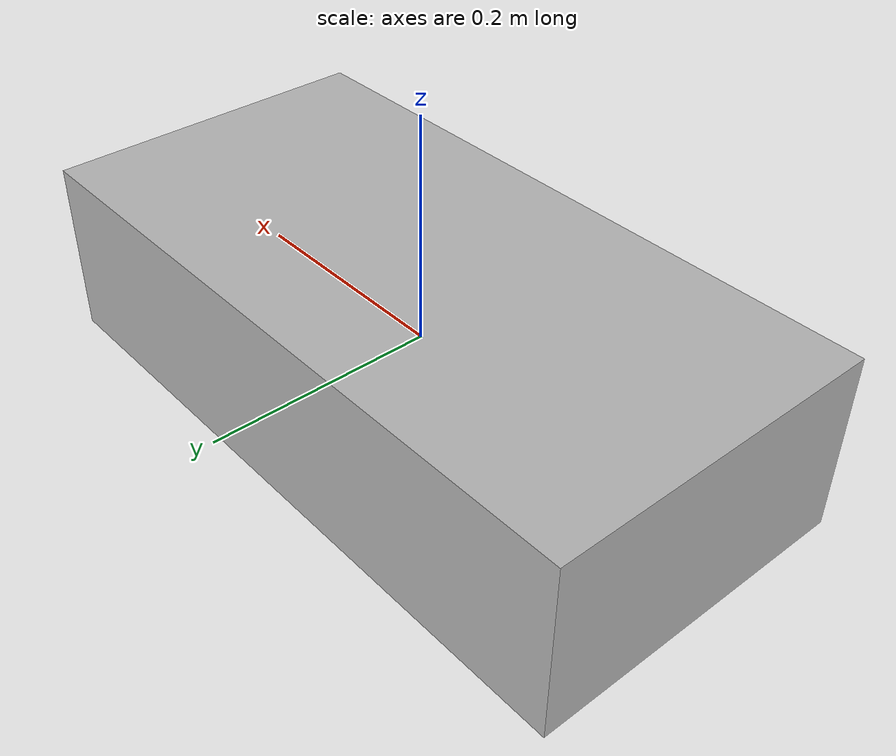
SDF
<?xml version="1.0"?>
<sdf version="1.9">
  <model name="charging_dock">
    <static>true</static>
    <link name="link">
      <collision name="collision"><geometry><box><size>0.6 0.3 0.16</size></box></geometry></collision>
      <visual name="visual"><geometry><box><size>0.6 0.3 0.16</size></box></geometry></visual>
    </link>
  </model>
</sdf>
